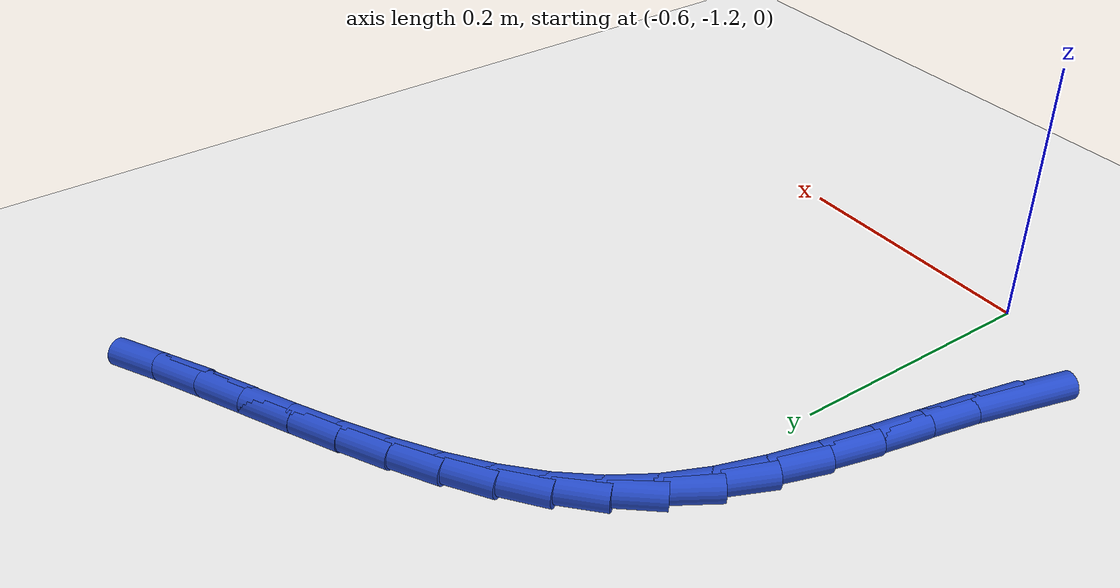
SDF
<sdf version="1.6">
 <world name="default">
  <model name="ground_plane">
   <static>1</static>
   <link name="link">
    <collision name="collision">
     <geometry><plane><normal>0 0 1</normal><size>100 100</size></plane></geometry>
     <surface><friction><ode><mu>100</mu><mu2>50</mu2></ode></friction></surface>
    </collision>
    <visual name="visual">
     <cast_shadows>0</cast_shadows>
     <geometry><plane><normal>0 0 1</normal><size>100 100</size></plane></geometry>
     <material>
      <script><uri>file://media/materials/scripts/gazebo.material</uri><name>Gazebo/WhiteGlow</name></script>
     </material>
    </visual>
   </link>
  </model>
  <model name="line">
   <link name="link_172">
    <pose>-0.6753669061619 -1.1191261329232134 0.01 0 1.57 1.2992015775981078</pose>
    <collision name="collision">
     <geometry><cylinder><radius>0.01</radius><length>0.08</length></cylinder></geometry>
    </collision>
    <visual name="visual">
     <material>
      <script><name>Gazebo/Blue</name><uri>file://media/materials/scripts/gazebo.material</uri></script>
     </material>
     <geometry><cylinder><radius>0.01</radius><length>0.08</length></cylinder></geometry>
    </visual>
   </link>
   <link name="link_173">
    <pose>-0.665381663229582 -1.083269361427713 0.01 0 1.57 1.34775597683211</pose>
    <collision name="collision">
     <geometry><cylinder><radius>0.01</radius><length>0.08</length></cylinder></geometry>
    </collision>
    <visual name="visual">
     <material>
      <script><name>Gazebo/Blue</name><uri>file://media/materials/scripts/gazebo.material</uri></script>
     </material>
     <geometry><cylinder><radius>0.01</radius><length>0.08</length></cylinder></geometry>
    </visual>
   </link>
   <link name="link_174">
    <pose>-0.6569624457128068 -1.0461498804194227 0.01 0 1.57 1.3666721155936299</pose>
    <collision name="collision">
     <geometry><cylinder><radius>0.01</radius><length>0.08</length></cylinder></geometry>
    </collision>
    <visual name="visual">
     <material>
      <script><name>Gazebo/Blue</name><uri>file://media/materials/scripts/gazebo.material</uri></script>
     </material>
     <geometry><cylinder><radius>0.01</radius><length>0.08</length></cylinder></geometry>
    </visual>
   </link>
   <link name="link_175">
    <pose>-0.6491715269610517 -1.0085139250469248 0.01 0 1.57 1.357538223878719</pose>
    <collision name="collision">
     <geometry><cylinder><radius>0.01</radius><length>0.08</length></cylinder></geometry>
    </collision>
    <visual name="visual">
     <material>
      <script><name>Gazebo/Blue</name><uri>file://media/materials/scripts/gazebo.material</uri></script>
     </material>
     <geometry><cylinder><radius>0.01</radius><length>0.08</length></cylinder></geometry>
    </visual>
   </link>
   <link name="link_176">
    <pose>-0.641071180323794 -0.9711077304588006 0.01 0 1.57 1.3196281729255057</pose>
    <collision name="collision">
     <geometry><cylinder><radius>0.01</radius><length>0.08</length></cylinder></geometry>
    </collision>
    <visual name="visual">
     <material>
      <script><name>Gazebo/Blue</name><uri>file://media/materials/scripts/gazebo.material</uri></script>
     </material>
     <geometry><cylinder><radius>0.01</radius><length>0.08</length></cylinder></geometry>
    </visual>
   </link>
   <link name="link_177">
    <pose>-0.631723679150511 -0.9346775318036338 0.01 0 1.57 1.2500039603613482</pose>
    <collision name="collision">
     <geometry><cylinder><radius>0.01</radius><length>0.08</length></cylinder></geometry>
    </collision>
    <visual name="visual">
     <material>
      <script><name>Gazebo/Blue</name><uri>file://media/materials/scripts/gazebo.material</uri></script>
     </material>
     <geometry><cylinder><radius>0.01</radius><length>0.08</length></cylinder></geometry>
    </visual>
   </link>
   <link name="link_178">
    <pose>-0.6201912967906802 -0.8999695642300053 0.01 0 1.57 1.1441515742966788</pose>
    <collision name="collision">
     <geometry><cylinder><radius>0.01</radius><length>0.08</length></cylinder></geometry>
    </collision>
    <visual name="visual">
     <material>
      <script><name>Gazebo/Blue</name><uri>file://media/materials/scripts/gazebo.material</uri></script>
     </material>
     <geometry><cylinder><radius>0.01</radius><length>0.08</length></cylinder></geometry>
    </visual>
   </link>
   <link name="link_179">
    <pose>-0.6055363065937792 -0.8677300628864973 0.01 0 1.57 1.0041795598327887</pose>
    <collision name="collision">
     <geometry><cylinder><radius>0.01</radius><length>0.08</length></cylinder></geometry>
    </collision>
    <visual name="visual">
     <material>
      <script><name>Gazebo/Blue</name><uri>file://media/materials/scripts/gazebo.material</uri></script>
     </material>
     <geometry><cylinder><radius>0.01</radius><length>0.08</length></cylinder></geometry>
    </visual>
   </link>
   <link name="link_180">
    <pose>-0.5869860628240808 -0.8385724414487724 0.01 0 1.57 0.8664747345966234</pose>
    <collision name="collision">
     <geometry><cylinder><radius>0.01</radius><length>0.08</length></cylinder></geometry>
    </collision>
    <visual name="visual">
     <material>
      <script><name>Gazebo/Blue</name><uri>file://media/materials/scripts/gazebo.material</uri></script>
     </material>
     <geometry><cylinder><radius>0.01</radius><length>0.08</length></cylinder></geometry>
    </visual>
   </link>
   <link name="link_181">
    <pose>-0.5647079730270784 -0.812353761705367 0.01 0 1.57 0.748496814431956</pose>
    <collision name="collision">
     <geometry><cylinder><radius>0.01</radius><length>0.08</length></cylinder></geometry>
    </collision>
    <visual name="visual">
     <material>
      <script><name>Gazebo/Blue</name><uri>file://media/materials/scripts/gazebo.material</uri></script>
     </material>
     <geometry><cylinder><radius>0.01</radius><length>0.08</length></cylinder></geometry>
    </visual>
   </link>
   <link name="link_182">
    <pose>-0.5392017200560767 -0.7886637420280868 0.01 0 1.57 0.6524212858152773</pose>
    <collision name="collision">
     <geometry><cylinder><radius>0.01</radius><length>0.08</length></cylinder></geometry>
    </collision>
    <visual name="visual">
     <material>
      <script><name>Gazebo/Blue</name><uri>file://media/materials/scripts/gazebo.material</uri></script>
     </material>
     <geometry><cylinder><radius>0.01</radius><length>0.08</length></cylinder></geometry>
    </visual>
   </link>
   <link name="link_183">
    <pose>-0.5109673687632152 -0.7670917934385639 0.01 0 1.57 0.577848820301415</pose>
    <collision name="collision">
     <geometry><cylinder><radius>0.01</radius><length>0.08</length></cylinder></geometry>
    </collision>
    <visual name="visual">
     <material>
      <script><name>Gazebo/Blue</name><uri>file://media/materials/scripts/gazebo.material</uri></script>
     </material>
     <geometry><cylinder><radius>0.01</radius><length>0.08</length></cylinder></geometry>
    </visual>
   </link>
   <link name="link_184">
    <pose>-0.4805049840006352 -0.7472273269584312 0.01 0 1.57 0.5231901133398039</pose>
    <collision name="collision">
     <geometry><cylinder><radius>0.01</radius><length>0.08</length></cylinder></geometry>
    </collision>
    <visual name="visual">
     <material>
      <script><name>Gazebo/Blue</name><uri>file://media/materials/scripts/gazebo.material</uri></script>
     </material>
     <geometry><cylinder><radius>0.01</radius><length>0.08</length></cylinder></geometry>
    </visual>
   </link>
   <link name="link_185">
    <pose>-0.44831463062047605 -0.7286597536093204 0.01 0 1.57 0.4866479564194852</pose>
    <collision name="collision">
     <geometry><cylinder><radius>0.01</radius><length>0.08</length></cylinder></geometry>
    </collision>
    <visual name="visual">
     <material>
      <script><name>Gazebo/Blue</name><uri>file://media/materials/scripts/gazebo.material</uri></script>
     </material>
     <geometry><cylinder><radius>0.01</radius><length>0.08</length></cylinder></geometry>
    </visual>
   </link>
   <link name="link_186">
    <pose>-0.4148963734748778 -0.7109784844128635 0.01 0 1.57 0.4667472361686635</pose>
    <collision name="collision">
     <geometry><cylinder><radius>0.01</radius><length>0.08</length></cylinder></geometry>
    </collision>
    <visual name="visual">
     <material>
      <script><name>Gazebo/Blue</name><uri>file://media/materials/scripts/gazebo.material</uri></script>
     </material>
     <geometry><cylinder><radius>0.01</radius><length>0.08</length></cylinder></geometry>
    </visual>
   </link>
   <link name="link_187">
    <pose>-0.38075027741598066 -0.6937729303906929 0.01 0 1.57 0.46256463758249106</pose>
    <collision name="collision">
     <geometry><cylinder><radius>0.01</radius><length>0.08</length></cylinder></geometry>
    </collision>
    <visual name="visual">
     <material>
      <script><name>Gazebo/Blue</name><uri>file://media/materials/scripts/gazebo.material</uri></script>
     </material>
     <geometry><cylinder><radius>0.01</radius><length>0.08</length></cylinder></geometry>
    </visual>
   </link>
   <link name="link_188">
    <pose>-0.34637640729592445 -0.6766325025644401 0.01 0 1.57 0.4738026052655998</pose>
    <collision name="collision">
     <geometry><cylinder><radius>0.01</radius><length>0.08</length></cylinder></geometry>
    </collision>
    <visual name="visual">
     <material>
      <script><name>Gazebo/Blue</name><uri>file://media/materials/scripts/gazebo.material</uri></script>
     </material>
     <geometry><cylinder><radius>0.01</radius><length>0.08</length></cylinder></geometry>
    </visual>
   </link>
   <link name="link_189">
    <pose>-0.31227482796684874 -0.6591466119557375 0.01 0 1.57 0.5007877261243673</pose>
    <collision name="collision">
     <geometry><cylinder><radius>0.01</radius><length>0.08</length></cylinder></geometry>
    </collision>
    <visual name="visual">
     <material>
      <script><name>Gazebo/Blue</name><uri>file://media/materials/scripts/gazebo.material</uri></script>
     </material>
     <geometry><cylinder><radius>0.01</radius><length>0.08</length></cylinder></geometry>
    </visual>
   </link>
  </model>
 </world>
</sdf>
